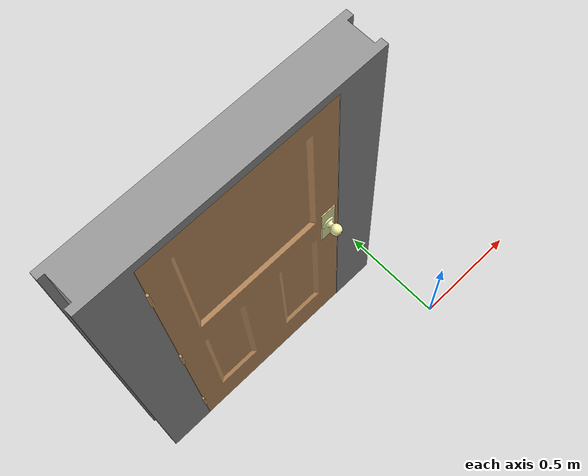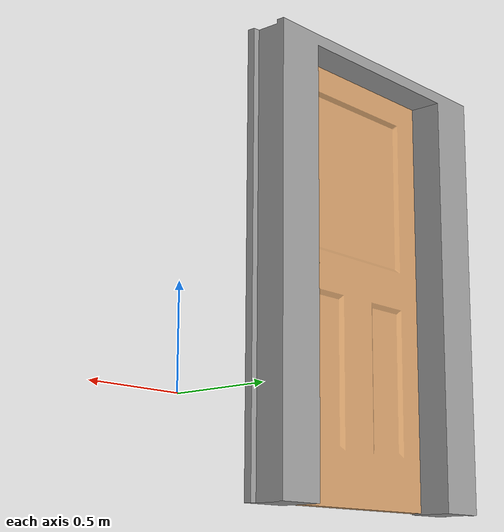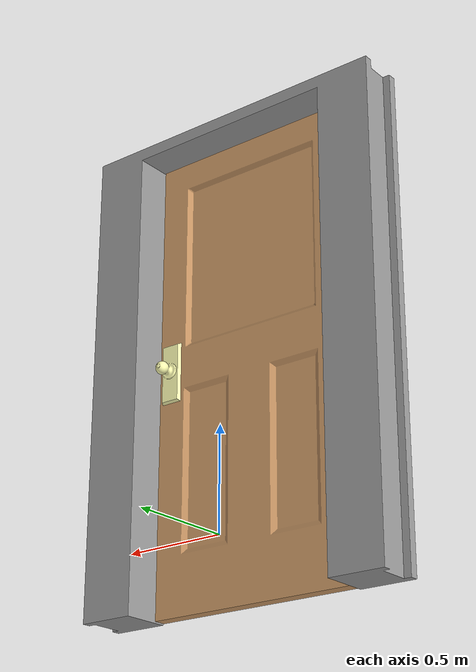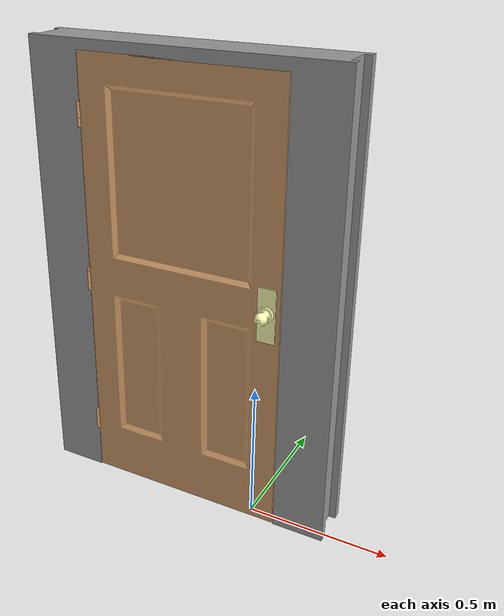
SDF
<?xml version='1.0'?>
<sdf version='1.6'>
  <model name='rai_main_door'>
    <link name='link_2'>
      <pose frame=''>0.188195 -0.524993 1.9972 3.14159 0.001593 3.14159</pose>
      <inertial>
        <mass>1</mass>
        <inertia>
          <ixx>0.166667</ixx>
          <ixy>0</ixy>
          <ixz>0</ixz>
          <iyy>0.166667</iyy>
          <iyz>0</iyz>
          <izz>0.166667</izz>
        </inertia>
        <pose frame=''>0 0 0 0 -0 0</pose>
      </inertial>
      <self_collide>0</self_collide>
      <kinematic>0</kinematic>
      <gravity>1</gravity>
      <visual name='visual'>
        <pose frame=''>0 0 0 0 -0 0</pose>
        <geometry>
          <mesh>
	    <uri>model://rai_main_door/meshes/rai_frame_door.STL</uri>
            <scale>1 1 1</scale>
          </mesh>
        </geometry>
        <material>
          <lighting>1</lighting>
          <script>
            <uri>file://media/materials/scripts/gazebo.material</uri>
            <name>Gazebo/Grey</name>
          </script>
          <ambient>0.1 0.1 0.1 0.1</ambient>
          <diffuse>0.3 0.3 0.3 0.5</diffuse>
          <specular>0.01 0.01 0.01 1</specular>
          <emissive>0 0 0 0.5</emissive>
          <shader type='vertex'>
            <normal_map>__default__</normal_map>
          </shader>
        </material>
        <cast_shadows>1</cast_shadows>
        <transparency>0</transparency>
      </visual>
      <collision name='collision'>
        <laser_retro>0</laser_retro>
        <max_contacts>10</max_contacts>
        <pose frame=''>0 0 0 0 -0 0</pose>
        <geometry>
          <mesh>
            <uri>model://rai_main_door/meshes/rai_frame_door.STL</uri>
          </mesh>
        </geometry>
        <surface>
          <friction>
            <ode>
              <mu>1</mu>
              <mu2>1</mu2>
              <fdir1>0 0 0</fdir1>
              <slip1>0</slip1>
              <slip2>0</slip2>
            </ode>
            <torsional>
              <coefficient>1</coefficient>
              <patch_radius>0</patch_radius>
              <surface_radius>0</surface_radius>
              <use_patch_radius>1</use_patch_radius>
              <ode>
                <slip>0</slip>
              </ode>
            </torsional>
          </friction>
          <bounce>
            <restitution_coefficient>0</restitution_coefficient>
            <threshold>1e+06</threshold>
          </bounce>
          <contact>
            <collide_without_contact>0</collide_without_contact>
            <collide_without_contact_bitmask>1</collide_without_contact_bitmask>
            <collide_bitmask>1</collide_bitmask>
            <ode>
              <soft_cfm>0</soft_cfm>
              <soft_erp>0.2</soft_erp>
              <kp>1e+13</kp>
              <kd>1</kd>
              <max_vel>0.01</max_vel>
              <min_depth>0</min_depth>
            </ode>
            <bullet>
              <split_impulse>1</split_impulse>
              <split_impulse_penetration_threshold>-0.01</split_impulse_penetration_threshold>
              <soft_cfm>0</soft_cfm>
              <soft_erp>0.2</soft_erp>
              <kp>1e+13</kp>
              <kd>1</kd>
            </bullet>
          </contact>
        </surface>
      </collision>
    </link>
    <link name='link_3'>
      <pose frame=''>0.188195 -0.524993 2.0072 3.14159 0.001593 3.14159</pose>
      <inertial>
        <mass>1</mass>
        <inertia>
          <ixx>0.166667</ixx>
          <ixy>0</ixy>
          <ixz>0</ixz>
          <iyy>0.166667</iyy>
          <iyz>0</iyz>
          <izz>0.166667</izz>
        </inertia>
        <pose frame=''>0 0 0 0 -0 0</pose>
      </inertial>
      <self_collide>0</self_collide>
      <kinematic>0</kinematic>
      <visual name='visual'>
        <pose frame=''>0 0 0 0 -0 0</pose>
        <geometry>
          <mesh>
            <uri>model://rai_main_door/meshes/rai_door.STL</uri>
            <scale>1 1 1</scale>
          </mesh>
        </geometry>
        <material>
	  <lighting>1</lighting>
          <script>
            <uri>file://media/materials/scripts/gazebo.material</uri>
            <name>Gazebo/Grey</name>
          </script>
          <ambient>0.8 0.6 0.4 1</ambient>
          <diffuse>0.8 0.6 0.4 1</diffuse>
          <specular>0.01 0.01 0.01 1</specular>
          <emissive>0 0 0 1</emissive>
          <shader type='vertex'>
            <normal_map>__default__</normal_map>
          </shader>

        </material>
    <cast_shadows>1</cast_shadows>
        <transparency>0</transparency>
      </visual>
      <collision name='collision'>
        <laser_retro>0</laser_retro>
        <max_contacts>10</max_contacts>
        <pose frame=''>0 0 0 0 -0 0</pose>
        <geometry>
          <mesh>
            <uri>model://rai_main_door/meshes/rai_door.STL</uri>
          </mesh>
        </geometry>
        <surface>
          <friction>
            <ode>
              <mu>1</mu>
              <mu2>1</mu2>
              <fdir1>0 0 0</fdir1>
              <slip1>0</slip1>
              <slip2>0</slip2>
            </ode>
            <torsional>
              <coefficient>1</coefficient>
              <patch_radius>0</patch_radius>
              <surface_radius>0</surface_radius>
              <use_patch_radius>1</use_patch_radius>
              <ode>
                <slip>0</slip>
              </ode>
            </torsional>
          </friction>
          <bounce>
            <restitution_coefficient>0</restitution_coefficient>
            <threshold>1e+06</threshold>
          </bounce>
          <contact>
            <collide_without_contact>0</collide_without_contact>
            <collide_without_contact_bitmask>1</collide_without_contact_bitmask>
            <collide_bitmask>1</collide_bitmask>
            <ode>
              <soft_cfm>0</soft_cfm>
              <soft_erp>0.2</soft_erp>
              <kp>1e+13</kp>
              <kd>1</kd>
              <max_vel>0.01</max_vel>
              <min_depth>0</min_depth>
            </ode>
            <bullet>
              <split_impulse>1</split_impulse>
              <split_impulse_penetration_threshold>-0.01</split_impulse_penetration_threshold>
              <soft_cfm>0</soft_cfm>
              <soft_erp>0.2</soft_erp>
              <kp>1e+13</kp>
              <kd>1</kd>
            </bullet>
          </contact>
        </surface>
      </collision>
    </link>
    <link name='link_4'>
      <pose frame=''>0.188195 -0.524993 1.9972 3.14159 0.001593 3.14159</pose>
      <inertial>
        <mass>1</mass>
        <inertia>
          <ixx>0.166667</ixx>
          <ixy>0</ixy>
          <ixz>0</ixz>
          <iyy>0.166667</iyy>
          <iyz>0</iyz>
          <izz>0.166667</izz>
        </inertia>
        <pose frame=''>0 0 0 0 -0 0</pose>
      </inertial>
      <self_collide>0</self_collide>
      <kinematic>0</kinematic>
      <gravity>0</gravity>
      <visual name='visual'>
        <pose frame=''>0 0 0 0 -0 0</pose>
        <geometry>
          <mesh>
            <uri>model://rai_main_door/meshes/rai_knob_door.STL</uri>
            <scale>1 1 1</scale>
          </mesh>
        </geometry>
        <material>
          <lighting>1</lighting>
          <script>
            <uri>file://media/materials/scripts/gazebo.material</uri>
            <name>Gazebo/Grey</name>
          </script>
          <ambient>1 1 0.3 1</ambient>
          <diffuse>1 1 0.7 1</diffuse>
          <specular>0.01 0.01 0.01 1</specular>
          <emissive>0 0 0 1</emissive>
          <shader type='vertex'>
            <normal_map>__default__</normal_map>
          </shader>
        </material>
        <cast_shadows>1</cast_shadows>
        <transparency>0</transparency>
      </visual>
    </link>
    <link name='link_5'>
      <pose frame=''>-0.564583 1.57498 1.9984 3.14159 0.001593 -0.001593</pose>
      <inertial>
        <mass>1</mass>
        <inertia>
          <ixx>0.166667</ixx>
          <ixy>0</ixy>
          <ixz>0</ixz>
          <iyy>0.166667</iyy>
          <iyz>0</iyz>
          <izz>0.166667</izz>
        </inertia>
        <pose frame=''>0 0 0 0 -0 0</pose>
      </inertial>
      <self_collide>0</self_collide>
      <kinematic>0</kinematic>
      <gravity>0</gravity>
      <visual name='visual'>
        <pose frame=''>0 0 0 0 -0 0</pose>
        <geometry>
          <mesh>
            <uri>model://rai_main_door/meshes/rai_knob_door.STL</uri>
            <scale>1 1 1</scale>
          </mesh>
        </geometry>
        <material>
          <lighting>1</lighting>
          <script>
            <uri>file://media/materials/scripts/gazebo.material</uri>
            <name>Gazebo/Grey</name>
          </script>
          <ambient>1 1 0.3 1</ambient>
          <diffuse>1 1 0.7 1</diffuse>
          <specular>0.01 0.01 0.01 1</specular>
          <emissive>0 0 0 1</emissive>
          <shader type='vertex'>
            <normal_map>__default__</normal_map>
          </shader>
        </material>
        <cast_shadows>1</cast_shadows>
        <transparency>0</transparency>
      </visual>
    </link>
    <static>1</static>
    <allow_auto_disable>1</allow_auto_disable>
  </model>
</sdf>
